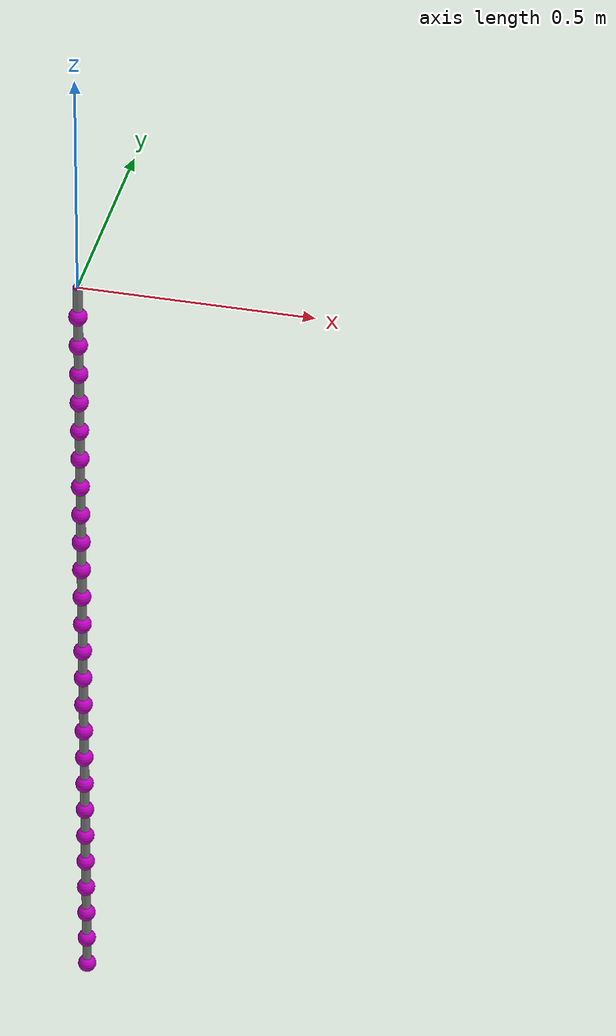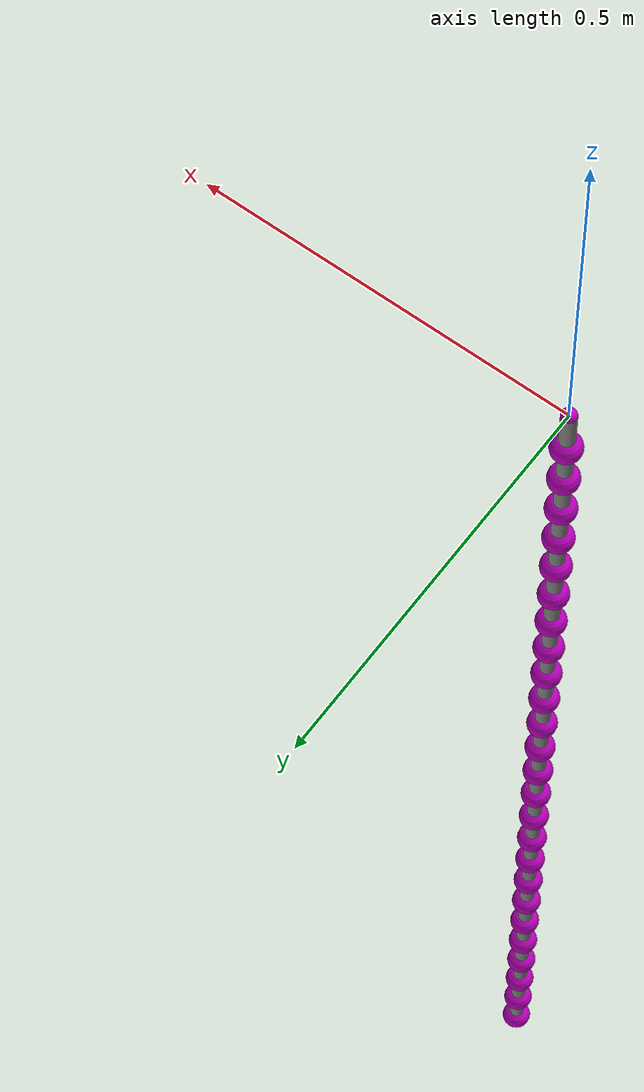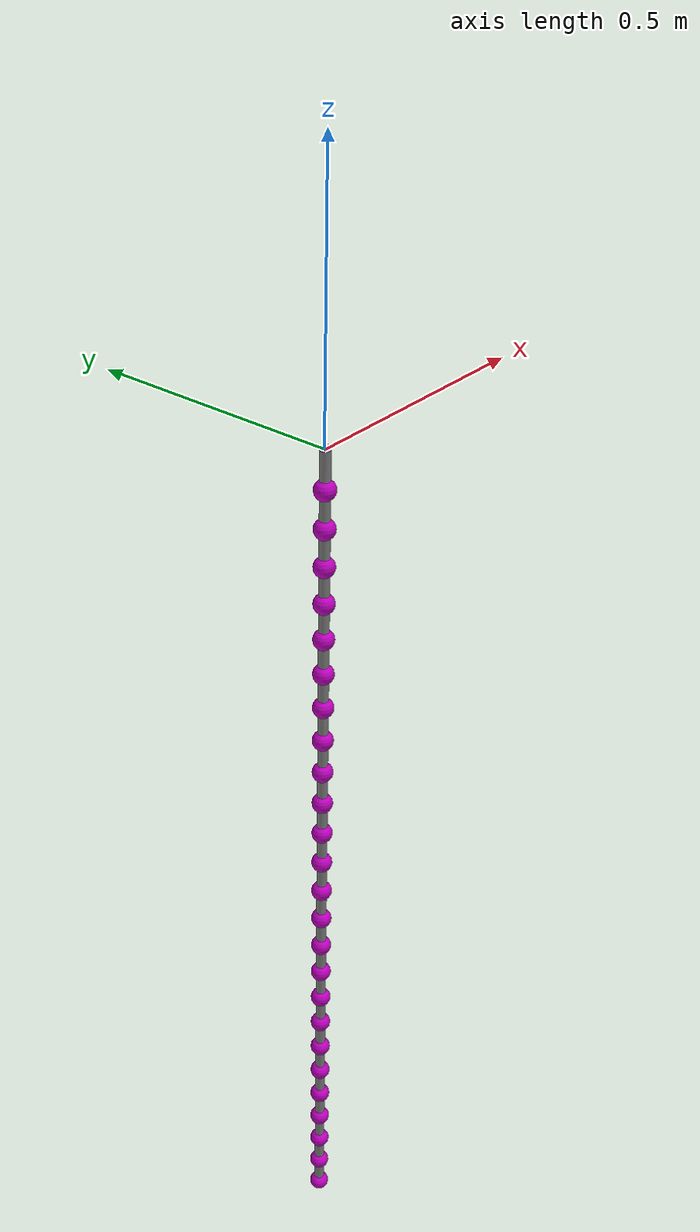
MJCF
<mujoco model="1_3D_model_w_N25">
  <compiler inertiafromgeom="auto" angle="radian" />
   <option timestep="0.0001" iterations="50" solver="PGS" integrator="Euler" gravity="0 0 -9.81" collision="predefined">
     <flag energy="enable" />
   </option>
   <asset>
		 <texture type="skybox" builtin="checker" rgb1="1 1 1" rgb2="1 1 1" width="200" height="200"  />

		 <material name="JointColor" 		 rgba="0.1 0.1 0.1 1" />
		 <material name="LimbColor" 		 rgba="0.1 0.1 0.1 1" />
		 <material name="pointMassColor" rgba="0.75 0.0 0.75 1" />

		 <material name="RefMassColor" 	 rgba="0.2 0.9 0.1 1.0" />

  </asset>

	<!-- Excluding the 5 bodies from the tip of the whip for target contact -->

	<visual>
		<global glow="1.0" fovy="45" ipd="0.0"/>
		<headlight specular="0.0 0.0 0.0" diffuse="1.0 1.0 1.0"/>
	</visual>

   <worldbody>
     <body name="cameramover" mocap="true" pos="0 0 0">
        <camera name="mycamera" pos="0.0 2.0 2.0" euler="1.5707 0 0" />
      </body>

      <body name="body_excitator" euler="0 0 0" pos="0 0 0">
        <joint name="joint_excitator" type="slide" axis="1 0 0" pos="0 0 0" />
         <geom name="geom_excitator" type="sphere" material="pointMassColor" pos="0 0 0" size="0.01" mass="6" />
          <body name="body_whip_node1" euler="0 0 0" pos="0 0 0">
              <joint name="joint_whip_node1_Y" type="hinge" axis="0 -1 0" pos="0 0 0" springref="0" stiffness="0.242" damping="0.092" />
               <geom type="cylinder" fromto="0 0 0 0 0 -0.0720" size="0.0100000" mass="0" />
               <geom name="geom_whip_node1" type="sphere" material="pointMassColor" pos="0 0 -0.0720" size="0.0200000" mass="0.0120000" />
               <body name="body_whip_node2" euler="0 0 0" pos="0 0 -0.0720">
                 <joint name="joint_whip_node2_Y" type="hinge" axis="0 -1 0" pos="0 0 0" springref="0" stiffness="0.242" damping="0.092" />
                  <geom type="cylinder" fromto="0 0 0 0 0 -0.0720" size="0.0100000" mass="0" />
                  <geom name="geom_whip_node2" type="sphere" material="pointMassColor" pos="0 0 -0.0720" size="0.0200000" mass="0.0120000" />
                  <body name="body_whip_node3" euler="0 0 0" pos="0 0 -0.0720">
                    <joint name="joint_whip_node3_Y" type="hinge" axis="0 -1 0" pos="0 0 0" springref="0" stiffness="0.242" damping="0.092" />
                     <geom type="cylinder" fromto="0 0 0 0 0 -0.0720" size="0.0100000" mass="0" />
                     <geom name="geom_whip_node3" type="sphere" material="pointMassColor" pos="0 0 -0.0720" size="0.0200000" mass="0.0120000" />
                     <body name="body_whip_node4" euler="0 0 0" pos="0 0 -0.0720">
                       <joint name="joint_whip_node4_Y" type="hinge" axis="0 -1 0" pos="0 0 0" springref="0" stiffness="0.242" damping="0.092" />
                        <geom type="cylinder" fromto="0 0 0 0 0 -0.0720" size="0.0100000" mass="0" />
                        <geom name="geom_whip_node4" type="sphere" material="pointMassColor" pos="0 0 -0.0720" size="0.0200000" mass="0.0120000" />
                        <body name="body_whip_node5" euler="0 0 0" pos="0 0 -0.0720">
                          <joint name="joint_whip_node5_Y" type="hinge" axis="0 -1 0" pos="0 0 0" springref="0" stiffness="0.242" damping="0.092" />
                           <geom type="cylinder" fromto="0 0 0 0 0 -0.0720" size="0.0100000" mass="0" />
                           <geom name="geom_whip_node5" type="sphere" material="pointMassColor" pos="0 0 -0.0720" size="0.0200000" mass="0.0120000" />
                           <body name="body_whip_node6" euler="0 0 0" pos="0 0 -0.0720">
                             <joint name="joint_whip_node6_Y" type="hinge" axis="0 -1 0" pos="0 0 0" springref="0" stiffness="0.242" damping="0.092" />
                              <geom type="cylinder" fromto="0 0 0 0 0 -0.0720" size="0.0100000" mass="0" />
                              <geom name="geom_whip_node6" type="sphere" material="pointMassColor" pos="0 0 -0.0720" size="0.0200000" mass="0.0120000" />
                              <body name="body_whip_node7" euler="0 0 0" pos="0 0 -0.0720">
                                <joint name="joint_whip_node7_Y" type="hinge" axis="0 -1 0" pos="0 0 0" springref="0" stiffness="0.242" damping="0.092" />
                                 <geom type="cylinder" fromto="0 0 0 0 0 -0.0720" size="0.0100000" mass="0" />
                                 <geom name="geom_whip_node7" type="sphere" material="pointMassColor" pos="0 0 -0.0720" size="0.0200000" mass="0.0120000" />
                                 <body name="body_whip_node8" euler="0 0 0" pos="0 0 -0.0720">
                                   <joint name="joint_whip_node8_Y" type="hinge" axis="0 -1 0" pos="0 0 0" springref="0" stiffness="0.242" damping="0.092" />
                                    <geom type="cylinder" fromto="0 0 0 0 0 -0.0720" size="0.0100000" mass="0" />
                                    <geom name="geom_whip_node8" type="sphere" material="pointMassColor" pos="0 0 -0.0720" size="0.0200000" mass="0.0120000" />
                                    <body name="body_whip_node9" euler="0 0 0" pos="0 0 -0.0720">
                                      <joint name="joint_whip_node9_Y" type="hinge" axis="0 -1 0" pos="0 0 0" springref="0" stiffness="0.242" damping="0.092" />
                                       <geom type="cylinder" fromto="0 0 0 0 0 -0.0720" size="0.0100000" mass="0" />
                                       <geom name="geom_whip_node9" type="sphere" material="pointMassColor" pos="0 0 -0.0720" size="0.0200000" mass="0.0120000" />
                                       <body name="body_whip_node10" euler="0 0 0" pos="0 0 -0.0720">
                                         <joint name="joint_whip_node10_Y" type="hinge" axis="0 -1 0" pos="0 0 0" springref="0" stiffness="0.242" damping="0.092" />
                                          <geom type="cylinder" fromto="0 0 0 0 0 -0.0720" size="0.0100000" mass="0" />
                                          <geom name="geom_whip_node10" type="sphere" material="pointMassColor" pos="0 0 -0.0720" size="0.0200000" mass="0.0120000" />
                                          <body name="body_whip_node11" euler="0 0 0" pos="0 0 -0.0720">
                                            <joint name="joint_whip_node11_Y" type="hinge" axis="0 -1 0" pos="0 0 0" springref="0" stiffness="0.242" damping="0.092" />
                                             <geom type="cylinder" fromto="0 0 0 0 0 -0.0720" size="0.0100000" mass="0" />
                                             <geom name="geom_whip_node11" type="sphere" material="pointMassColor" pos="0 0 -0.0720" size="0.0200000" mass="0.0120000" />
                                             <body name="body_whip_node12" euler="0 0 0" pos="0 0 -0.0720">
                                               <joint name="joint_whip_node12_Y" type="hinge" axis="0 -1 0" pos="0 0 0" springref="0" stiffness="0.242" damping="0.092" />
                                                <geom type="cylinder" fromto="0 0 0 0 0 -0.0720" size="0.0100000" mass="0" />
                                                <geom name="geom_whip_node12" type="sphere" material="pointMassColor" pos="0 0 -0.0720" size="0.0200000" mass="0.0120000" />
                                                <body name="body_whip_node13" euler="0 0 0" pos="0 0 -0.0720">
                                                  <joint name="joint_whip_node13_Y" type="hinge" axis="0 -1 0" pos="0 0 0" springref="0" stiffness="0.242" damping="0.092" />
                                                   <geom type="cylinder" fromto="0 0 0 0 0 -0.0720" size="0.0100000" mass="0" />
                                                   <geom name="geom_whip_node13" type="sphere" material="pointMassColor" pos="0 0 -0.0720" size="0.0200000" mass="0.0120000" />
                                                   <body name="body_whip_node14" euler="0 0 0" pos="0 0 -0.0720">
                                                     <joint name="joint_whip_node14_Y" type="hinge" axis="0 -1 0" pos="0 0 0" springref="0" stiffness="0.242" damping="0.092" />
                                                      <geom type="cylinder" fromto="0 0 0 0 0 -0.0720" size="0.0100000" mass="0" />
                                                      <geom name="geom_whip_node14" type="sphere" material="pointMassColor" pos="0 0 -0.0720" size="0.0200000" mass="0.0120000" />
                                                      <body name="body_whip_node15" euler="0 0 0" pos="0 0 -0.0720">
                                                        <joint name="joint_whip_node15_Y" type="hinge" axis="0 -1 0" pos="0 0 0" springref="0" stiffness="0.242" damping="0.092" />
                                                         <geom type="cylinder" fromto="0 0 0 0 0 -0.0720" size="0.0100000" mass="0" />
                                                         <geom name="geom_whip_node15" type="sphere" material="pointMassColor" pos="0 0 -0.0720" size="0.0200000" mass="0.0120000" />
                                                         <body name="body_whip_node16" euler="0 0 0" pos="0 0 -0.0720">
                                                           <joint name="joint_whip_node16_Y" type="hinge" axis="0 -1 0" pos="0 0 0" springref="0" stiffness="0.242" damping="0.092" />
                                                            <geom type="cylinder" fromto="0 0 0 0 0 -0.0720" size="0.0100000" mass="0" />
                                                            <geom name="geom_whip_node16" type="sphere" material="pointMassColor" pos="0 0 -0.0720" size="0.0200000" mass="0.0120000" />
                                                            <body name="body_whip_node17" euler="0 0 0" pos="0 0 -0.0720">
                                                              <joint name="joint_whip_node17_Y" type="hinge" axis="0 -1 0" pos="0 0 0" springref="0" stiffness="0.242" damping="0.092" />
                                                               <geom type="cylinder" fromto="0 0 0 0 0 -0.0720" size="0.0100000" mass="0" />
                                                               <geom name="geom_whip_node17" type="sphere" material="pointMassColor" pos="0 0 -0.0720" size="0.0200000" mass="0.0120000" />
                                                               <body name="body_whip_node18" euler="0 0 0" pos="0 0 -0.0720">
                                                                 <joint name="joint_whip_node18_Y" type="hinge" axis="0 -1 0" pos="0 0 0" springref="0" stiffness="0.242" damping="0.092" />
                                                                  <geom type="cylinder" fromto="0 0 0 0 0 -0.0720" size="0.0100000" mass="0" />
                                                                  <geom name="geom_whip_node18" type="sphere" material="pointMassColor" pos="0 0 -0.0720" size="0.0200000" mass="0.0120000" />
                                                                  <body name="body_whip_node19" euler="0 0 0" pos="0 0 -0.0720">
                                                                    <joint name="joint_whip_node19_Y" type="hinge" axis="0 -1 0" pos="0 0 0" springref="0" stiffness="0.242" damping="0.092" />
                                                                     <geom type="cylinder" fromto="0 0 0 0 0 -0.0720" size="0.0100000" mass="0" />
                                                                     <geom name="geom_whip_node19" type="sphere" material="pointMassColor" pos="0 0 -0.0720" size="0.0200000" mass="0.0120000" />
                                                                     <body name="body_whip_node20" euler="0 0 0" pos="0 0 -0.0720">
                                                                       <joint name="joint_whip_node20_Y" type="hinge" axis="0 -1 0" pos="0 0 0" springref="0" stiffness="0.242" damping="0.092" />
                                                                        <geom type="cylinder" fromto="0 0 0 0 0 -0.0720" size="0.0100000" mass="0" />
                                                                        <geom name="geom_whip_node20" type="sphere" material="pointMassColor" pos="0 0 -0.0720" size="0.0200000" mass="0.0120000" />
                                                                        <body name="body_whip_node21" euler="0 0 0" pos="0 0 -0.0720">
                                                                          <joint name="joint_whip_node21_Y" type="hinge" axis="0 -1 0" pos="0 0 0" springref="0" stiffness="0.242" damping="0.092" />
                                                                           <geom type="cylinder" fromto="0 0 0 0 0 -0.0720" size="0.0100000" mass="0" />
                                                                           <geom name="geom_whip_node21" type="sphere" material="pointMassColor" pos="0 0 -0.0720" size="0.0200000" mass="0.0120000" />
                                                                           <body name="body_whip_node22" euler="0 0 0" pos="0 0 -0.0720">
                                                                             <joint name="joint_whip_node22_Y" type="hinge" axis="0 -1 0" pos="0 0 0" springref="0" stiffness="0.242" damping="0.092" />
                                                                              <geom type="cylinder" fromto="0 0 0 0 0 -0.0720" size="0.0100000" mass="0" />
                                                                              <geom name="geom_whip_node22" type="sphere" material="pointMassColor" pos="0 0 -0.0720" size="0.0200000" mass="0.0120000" />
                                                                              <body name="body_whip_node23" euler="0 0 0" pos="0 0 -0.0720">
                                                                                <joint name="joint_whip_node23_Y" type="hinge" axis="0 -1 0" pos="0 0 0" springref="0" stiffness="0.242" damping="0.092" />
                                                                                 <geom type="cylinder" fromto="0 0 0 0 0 -0.0720" size="0.0100000" mass="0" />
                                                                                 <geom name="geom_whip_node23" type="sphere" material="pointMassColor" pos="0 0 -0.0720" size="0.0200000" mass="0.0120000" />
                                                                                 <body name="body_whip_node24" euler="0 0 0" pos="0 0 -0.0720">
                                                                                   <joint name="joint_whip_node24_Y" type="hinge" axis="0 -1 0" pos="0 0 0" springref="0" stiffness="0.242" damping="0.092" />
                                                                                    <geom type="cylinder" fromto="0 0 0 0 0 -0.0720" size="0.0100000" mass="0" />
                                                                                    <geom name="geom_whip_node24" type="sphere" material="pointMassColor" pos="0 0 -0.0720" size="0.0200000" mass="0.0120000" />
                                                                                    <body name="body_whip_node25" euler="0 0 0" pos="0 0 -0.0720">
                                                                                      <joint name="joint_whip_node25_Y" type="hinge" axis="0 -1 0" pos="0 0 0" springref="0" stiffness="0.242" damping="0.092" />
                                                                                       <geom type="cylinder" fromto="0 0 0 0 0 -0.0720" size="0.0100000" mass="0" />
                                                                                       <geom name="geom_whip_node25" type="sphere" material="pointMassColor" pos="0 0 -0.0720" size="0.0200000" mass="0.0120000" />
                                                                                       <site name='site_whip_tip' pos='0 0 -0.0720' />
                                                                                    </body>
                                                                                 </body>
                                                                              </body>
                                                                           </body>
                                                                        </body>
                                                                     </body>
                                                                  </body>
                                                               </body>
                                                            </body>
                                                         </body>
                                                      </body>
                                                   </body>
                                                </body>
                                             </body>
                                          </body>
                                       </body>
                                    </body>
                                 </body>
                              </body>
                           </body>
                        </body>
                     </body>
                  </body>
               </body>
            </body>

        </body>

   </worldbody>

   <actuator>
      <position joint="joint_excitator" name="excitator_joint_Pgain" kp="500000" />
      <velocity joint="joint_excitator" name="excitator_joint_Dgain" kv=" 5000" />
   </actuator>

</mujoco>
